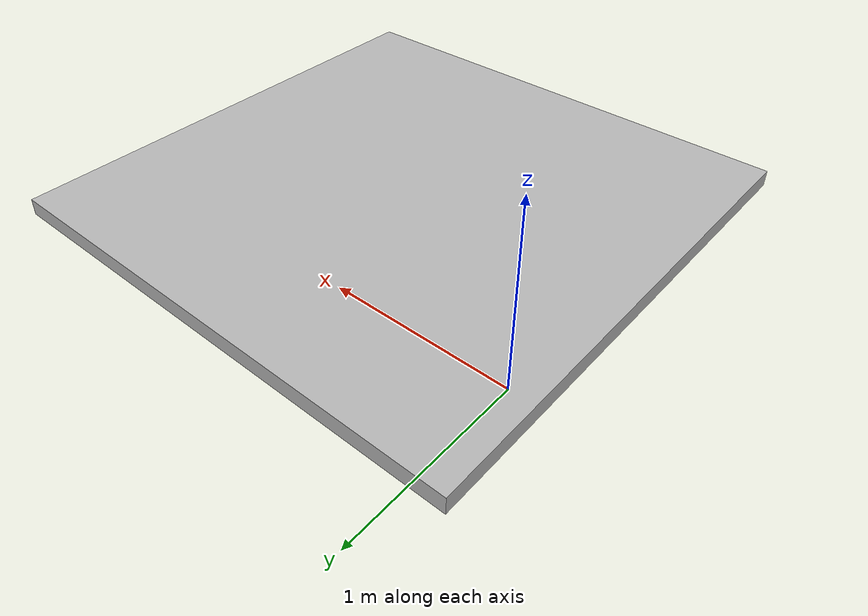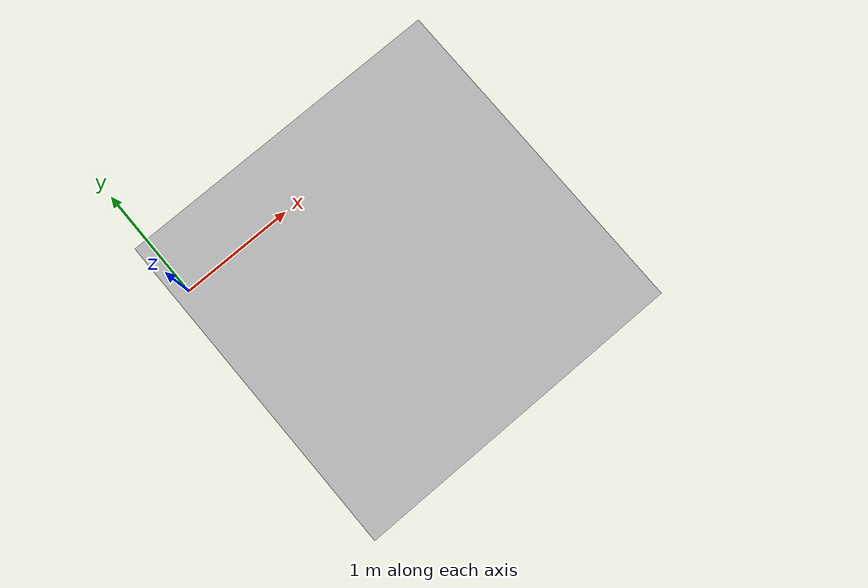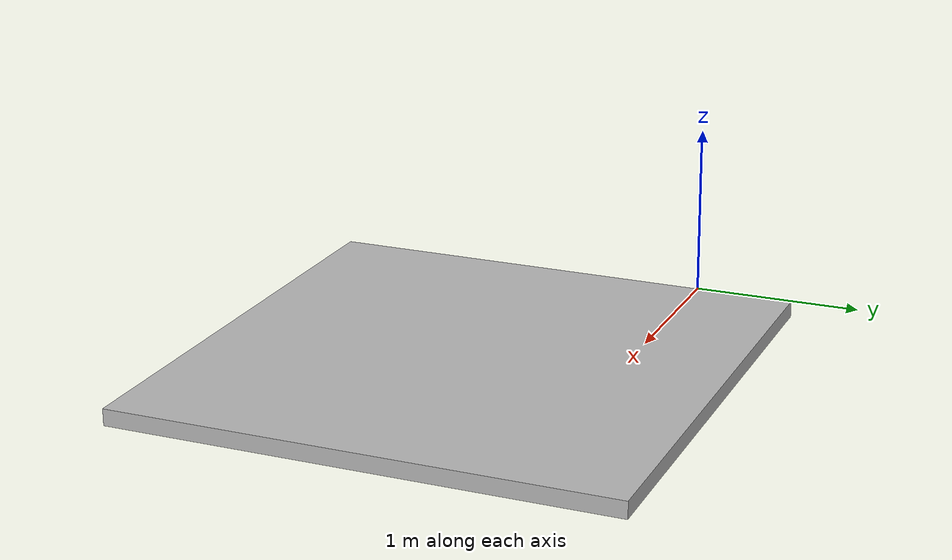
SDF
<?xml version="1.0"?>
<sdf version="1.4">
  <world name="default">
    <scene>
      <ambient>0 0 0 1</ambient>
      <shadows>0</shadows>
      <grid>0</grid>
      <background>0.7 0.7 0.7 1</background>
    </scene>

    <physics type="ode">
      <gravity>0 0 -9.8</gravity>
      <ode>
        <solver>
          <type>quick</type>
          <iters>10</iters>
          <sor>1.3</sor>
        </solver>
        <constraints>
          <cfm>0</cfm>
          <erp>0.1</erp>
          <contact_max_correcting_vel>10</contact_max_correcting_vel>
          <contact_surface_layer>0.001</contact_surface_layer>
        </constraints>
      </ode>
      <real_time_update_rate>1000</real_time_update_rate>
      <max_step_size>0.001</max_step_size>
      <real_time_factor>1</real_time_factor>
    </physics>

    <include>
      <uri>model://sun</uri>
    </include>
    <model name="ground">
      <pose>1.38 -0.94 -0.1 0 0 0</pose>
      <static>1</static>
      <link name="ground">
        <collision name="ground_coll">
          <geometry>
            <box>
              <size>10 10 .1</size>
            </box>
          </geometry>
          <surface>
            <contact>
              <ode/>
            </contact>
          </surface>
        </collision>
        <visual name="ground_vis">
          <geometry>
            <box>
              <size>3 3 .1</size>
            </box>
          </geometry>
          <material>
            <script>
              <uri>course.material</uri>
              <name>course</name>
            </script>
          </material>
        </visual>
      </link>
    </model>
  </world>
</sdf>
